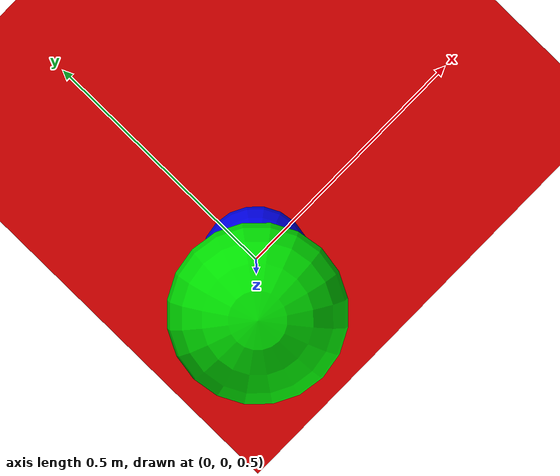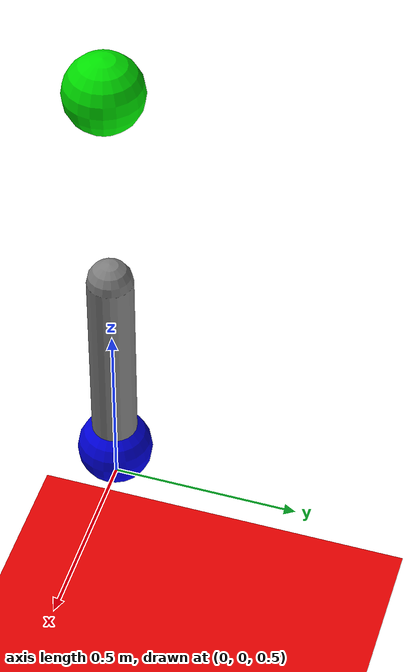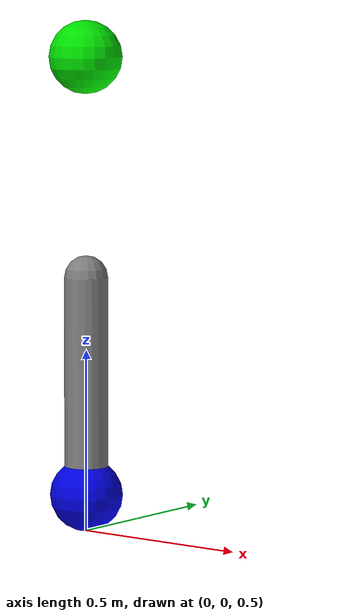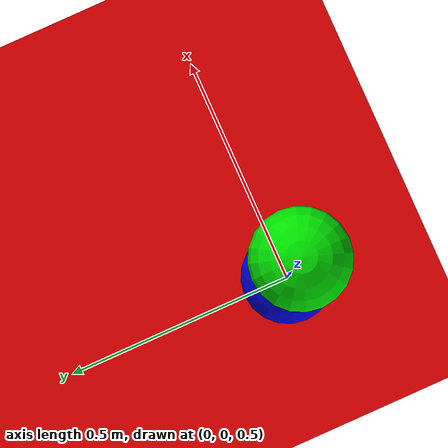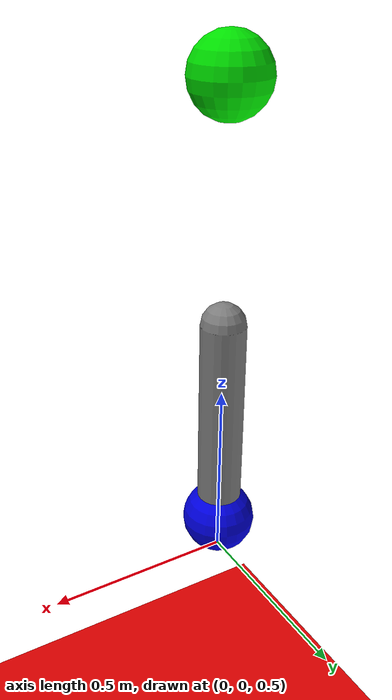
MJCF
<mujoco>
    <compiler coordinate="local" angle="radian"/>
    <option timestep="0.1">
        <flag energy="enable"/>
    </option>
    <worldbody>
        <light diffuse=".5 .5 .5" pos="0 0 3" dir="0 0 -1" castshadow="false"/>
        <geom name="floor" pos="0 0 0" size="0 0 .25" type="plane" condim="3" rgba="0.9 0 0 1"/>
        <body pos="0 0 0.9" name="pendulum">
            <geom type="capsule" pos="0 0 0" size="0.06 0.3"/>
            <joint type="hinge" name="hinge_y" pos="0 0 0.3" axis="0 1 0" damping = "0.5" limited="true" range="-20 20"/>
            <body pos="0 0 -0.3" name="EE" >
                    <site type="sphere" size="0.1" rgba="0 0 0.9 1"/>
            </body>
        </body>
        <body pos="0 0 1.8" name="target" >
            <site type="sphere" size="0.1" rgba="0 0.9 0 1"/>
        </body>
    </worldbody>
    <actuator>
        <motor name="hinge_y" gear="10" joint="hinge_y"/>
    </actuator>
    <sensor>
        <jointpos name="hinge_y" joint="hinge_y"/>
        <jointvel name="hinge_y_v" joint="hinge_y"/>
    </sensor>
</mujoco>
